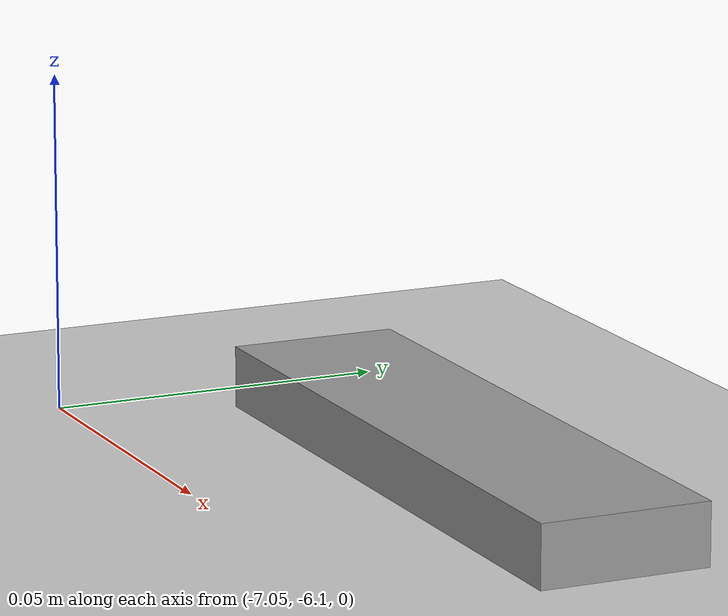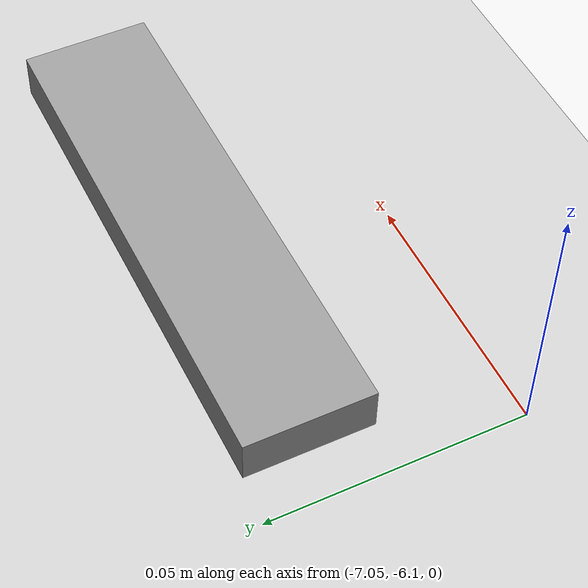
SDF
<sdf version="1.6">
 <world name="default">
  <model name="ground_plane">
   <static>1</static>
   <link name="link">
    <collision name="collision">
     <geometry><plane><normal>0 0 1</normal><size>100 100</size></plane></geometry>
     <surface>
      <contact><collide_bitmask>65535</collide_bitmask></contact>
      <friction><ode><mu>100</mu><mu2>50</mu2></ode></friction>
     </surface>
    </collision>
    <visual name="visual">
     <cast_shadows>0</cast_shadows>
     <geometry><plane><normal>0 0 1</normal><size>100 100</size></plane></geometry>
     <material>
      <script><uri>file://media/materials/scripts/gazebo.material</uri><name>Gazebo/Grey</name></script>
     </material>
    </visual>
   </link>
  </model>
  <model name="stone_10_2_5_1cm">
   <link name="link">
    <pose>0 0 0.005 0 -0 0</pose>
    <inertial>
     <mass>0.0628</mass>
     <inertia>
      <ixx>3.79417e-06</ixx>
      <ixy>0</ixy>
      <ixz>0</ixz>
      <iyy>5.28567e-05</iyy>
      <iyz>0</iyz>
      <izz>5.56042e-05</izz>
     </inertia>
    </inertial>
    <collision name="collision">
     <geometry><box><size>0.1 0.025 0.01</size></box></geometry>
     <surface>
      <contact>
       <poissons_ratio>0.15</poissons_ratio>
       <elastic_modulus>8e+10</elastic_modulus>
       <ode><kp>100000</kp><kd>100</kd><max_vel>100</max_vel><min_depth>0.001</min_depth></ode>
      </contact>
      <friction>
       <torsional>
        <coefficient>1</coefficient>
        <use_patch_radius>0</use_patch_radius>
        <surface_radius>0.01</surface_radius>
       </torsional>
      </friction>
     </surface>
    </collision>
    <visual name="visual">
     <geometry><box><size>0.1 0.025 0.01</size></box></geometry>
     <material>
      <script><uri>file://media/materials/scripts/gazebo.material</uri><name>Gazebo/Grey</name></script>
     </material>
    </visual>
   </link>
   <pose>-6.99049 -6.06342 -0.001002 0 -0 0</pose>
  </model>
 </world>
</sdf>
